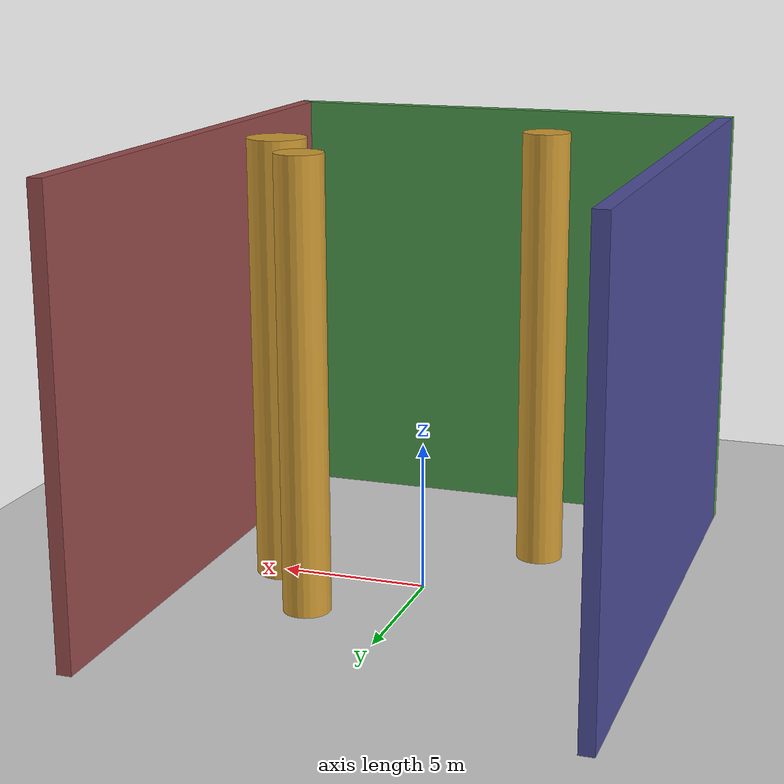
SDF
<?xml version="1.0" encoding="UTF-8"?>
<sdf version="1.9">
  <world name="obstacle_course">
    <physics type="ode">
      <max_step_size>0.004</max_step_size>
      <real_time_factor>1.0</real_time_factor>
      <real_time_update_rate>250</real_time_update_rate>
    </physics>
    <gravity>0 0 -9.8</gravity>
    <magnetic_field>6e-06 2.3e-05 -4.2e-05</magnetic_field>
    <atmosphere type="adiabatic"/>
    <scene>
      <grid>false</grid>
      <ambient>0.4 0.4 0.4 1</ambient>
      <background>0.7 0.7 0.7 1</background>
      <shadows>true</shadows>
    </scene>

    <model name="ground_plane">
      <static>true</static>
      <link name="link">
        <collision name="collision">
          <geometry>
            <plane>
              <normal>0 0 1</normal>
              <size>100 100</size>
            </plane>
          </geometry>
        </collision>
        <visual name="visual">
          <geometry>
            <plane>
              <normal>0 0 1</normal>
              <size>100 100</size>
            </plane>
          </geometry>
          <material>
            <ambient>0.8 0.8 0.8 1</ambient>
            <diffuse>0.8 0.8 0.8 1</diffuse>
            <specular>0.8 0.8 0.8 1</specular>
          </material>
        </visual>
      </link>
    </model>

    <light name="sunUTC" type="directional">
      <pose>0 0 500 0 0 0</pose>
      <cast_shadows>true</cast_shadows>
      <intensity>1</intensity>
      <direction>0.001 0.625 -0.78</direction>
      <diffuse>0.904 0.904 0.904 1</diffuse>
      <specular>0.271 0.271 0.271 1</specular>
      <attenuation>
        <range>2000</range>
        <linear>0</linear>
        <constant>1</constant>
        <quadratic>0</quadratic>
      </attenuation>
    </light>

    <spherical_coordinates>
      <surface_model>EARTH_WGS84</surface_model>
      <world_frame_orientation>ENU</world_frame_orientation>
      <latitude_deg>47.397971057728974</latitude_deg>
      <longitude_deg>8.546163739800146</longitude_deg>
      <elevation>0</elevation>
    </spherical_coordinates>

    <!-- Corridor wall East: runs North-South at x=8, from y=-10 to y=10 -->
    <model name="wall_east">
      <pose>8 0 7.5 0 0 0</pose>
      <static>true</static>
      <link name="link">
        <collision name="collision">
          <geometry>
            <box><size>0.5 20 15</size></box>
          </geometry>
        </collision>
        <visual name="visual">
          <geometry>
            <box><size>0.5 20 15</size></box>
          </geometry>
          <material>
            <ambient>0.6 0.3 0.3 1</ambient>
            <diffuse>0.6 0.3 0.3 1</diffuse>
          </material>
        </visual>
      </link>
    </model>

    <!-- Corridor wall West: runs North-South at x=-8, from y=-10 to y=10 -->
    <model name="wall_west">
      <pose>-8 0 7.5 0 0 0</pose>
      <static>true</static>
      <link name="link">
        <collision name="collision">
          <geometry>
            <box><size>0.5 20 15</size></box>
          </geometry>
        </collision>
        <visual name="visual">
          <geometry>
            <box><size>0.5 20 15</size></box>
          </geometry>
          <material>
            <ambient>0.3 0.3 0.6 1</ambient>
            <diffuse>0.3 0.3 0.6 1</diffuse>
          </material>
        </visual>
      </link>
    </model>

    <!-- Pillar 1: directly in front of spawn (North ~5m) -->
    <model name="pillar_1">
      <pose>5 0 7.5 0 0 0</pose>
      <static>true</static>
      <link name="link">
        <collision name="collision">
          <geometry>
            <cylinder><radius>1.0</radius><length>15</length></cylinder>
          </geometry>
        </collision>
        <visual name="visual">
          <geometry>
            <cylinder><radius>1.0</radius><length>15</length></cylinder>
          </geometry>
          <material>
            <ambient>0.8 0.6 0.2 1</ambient>
            <diffuse>0.8 0.6 0.2 1</diffuse>
          </material>
        </visual>
      </link>
    </model>

    <!-- Pillar 2: to the right (East ~3m, North ~3m) -->
    <model name="pillar_2">
      <pose>3 3 7.5 0 0 0</pose>
      <static>true</static>
      <link name="link">
        <collision name="collision">
          <geometry>
            <cylinder><radius>0.8</radius><length>15</length></cylinder>
          </geometry>
        </collision>
        <visual name="visual">
          <geometry>
            <cylinder><radius>0.8</radius><length>15</length></cylinder>
          </geometry>
          <material>
            <ambient>0.8 0.6 0.2 1</ambient>
            <diffuse>0.8 0.6 0.2 1</diffuse>
          </material>
        </visual>
      </link>
    </model>

    <!-- Pillar 3: behind-left (West ~3m, South ~4m) -->
    <model name="pillar_3">
      <pose>-3 -4 7.5 0 0 0</pose>
      <static>true</static>
      <link name="link">
        <collision name="collision">
          <geometry>
            <cylinder><radius>0.8</radius><length>15</length></cylinder>
          </geometry>
        </collision>
        <visual name="visual">
          <geometry>
            <cylinder><radius>0.8</radius><length>15</length></cylinder>
          </geometry>
          <material>
            <ambient>0.8 0.6 0.2 1</ambient>
            <diffuse>0.8 0.6 0.2 1</diffuse>
          </material>
        </visual>
      </link>
    </model>

    <!-- Back wall: closes the corridor on the South side -->
    <model name="wall_south">
      <pose>0 -10 7.5 0 0 0</pose>
      <static>true</static>
      <link name="link">
        <collision name="collision">
          <geometry>
            <box><size>16.5 0.5 15</size></box>
          </geometry>
        </collision>
        <visual name="visual">
          <geometry>
            <box><size>16.5 0.5 15</size></box>
          </geometry>
          <material>
            <ambient>0.3 0.6 0.3 1</ambient>
            <diffuse>0.3 0.6 0.3 1</diffuse>
          </material>
        </visual>
      </link>
    </model>

  </world>
</sdf>
